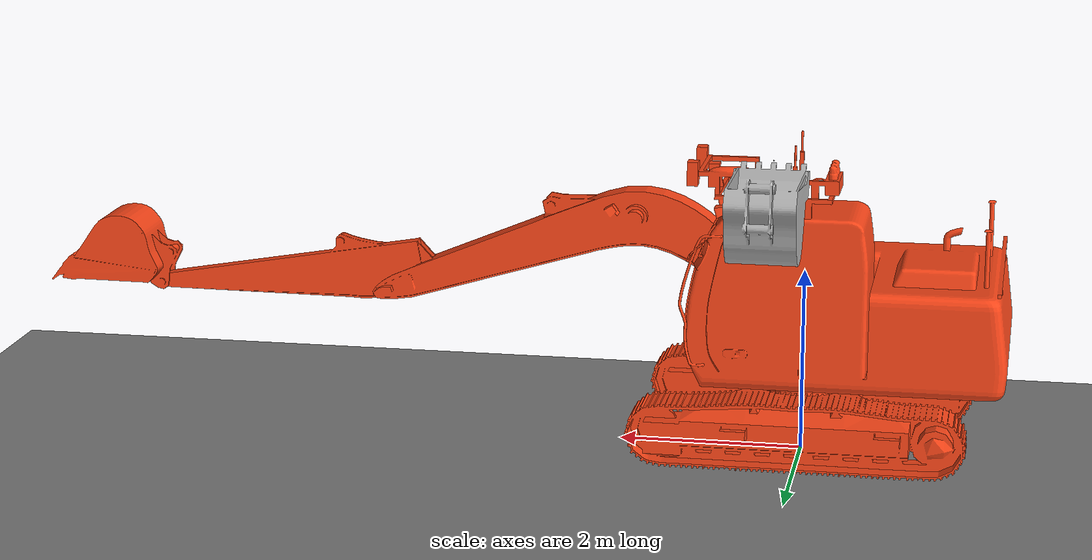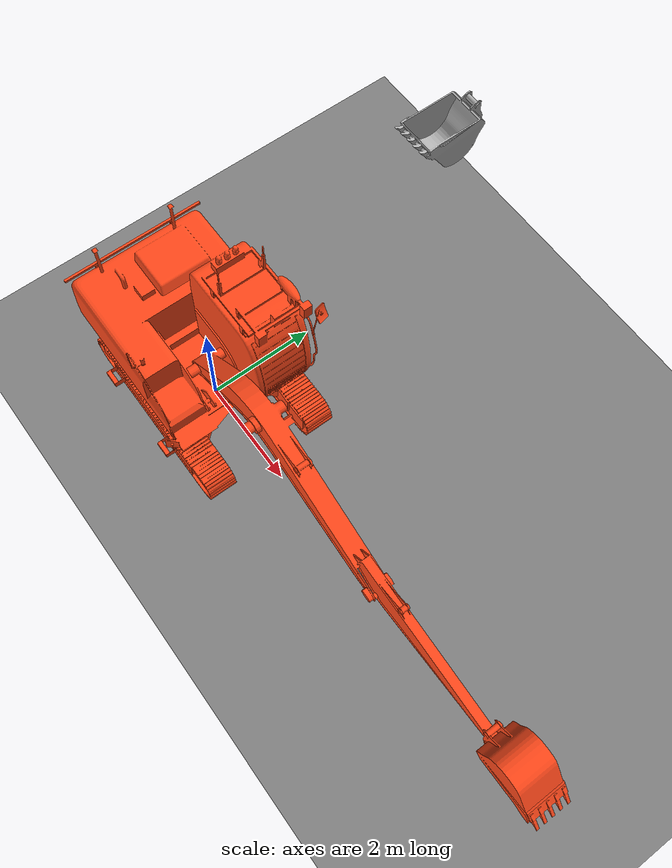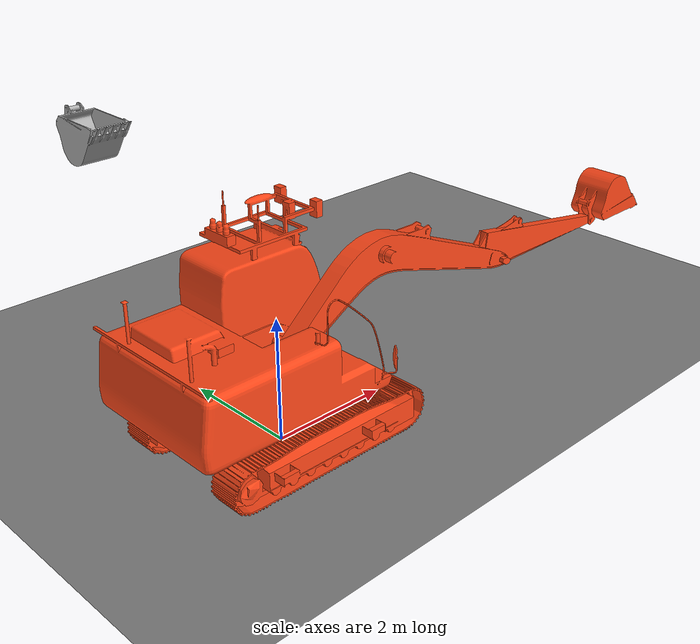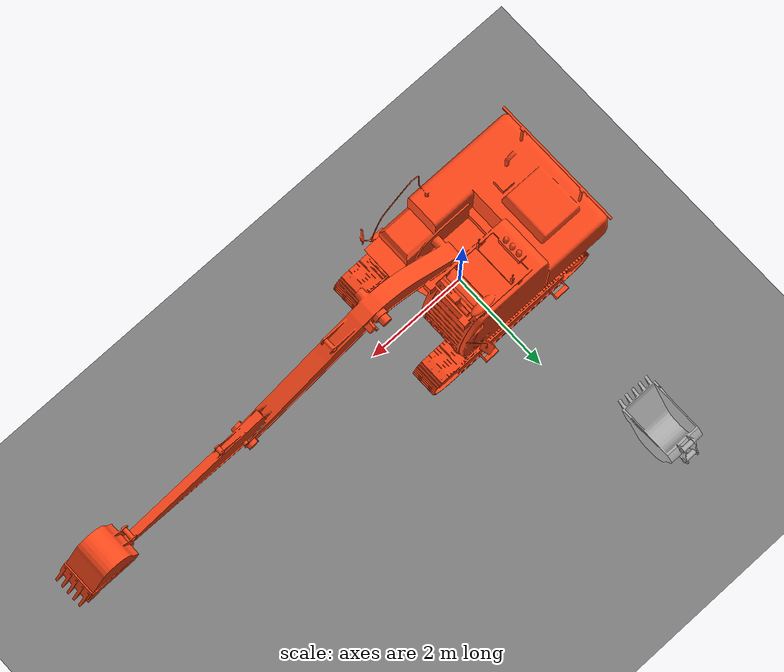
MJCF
<mujoco model="zx120">
  <default>
    <default class="robot">
      <default class="visual">
        <geom material="visualgeom" contype="0" conaffinity="0" group="2" />
      </default>
      <default class="collision">
        <geom material="collision_material" condim="3" contype="0" conaffinity="1" group="1" solref="0.005 1" friction="1 0.01 0.01" />
        <equality solimp="0.99 0.999 1e-05" solref="0.005 1" />
      </default>
    </default>
  </default>

  <compiler angle="radian" />
  <option timestep="0.02" integrator="Euler" gravity="0 0 -0.0981" />

  <custom>
    <!-- brax custom params -->
    <numeric data="0 -0.5 1.6 0.96" name="init_qpos"/>
  </custom>
  <asset>
    <material name="default_material" rgba="0.7 0.7 0.7 1" />
    <material name="collision_material" rgba="1.0 0.28 0.1 0.9" />
    <mesh name="zx120-crawler" file="zx120_description/meshes/zx120-crawler.stl" />
    <mesh name="zx120-body" file="zx120_description/meshes/zx120-body.stl" />
    <mesh name="zx120-boom" file="zx120_description/meshes/zx120-boom.stl" />
    <mesh name="zx120-arm" file="zx120_description/meshes/zx120-arm.stl" />
    <mesh name="zx120-bucket" file="zx120_description/meshes/zx120-bucket.stl" />
  </asset>

  <worldbody>
    <light pos="0 0 15"/>
    <geom name="ground" type="plane" size="10 10 0.1"/>
      <body name="track_link" pos="0 0 0.1" quat="1 0 0 0">
        <inertial pos="-0.155869 0 0.358402" quat="1 0 0 0" mass="1" diaginertia="1 1 1" />
        <geom name="track_link_collision" pos="0 0 0" quat="1 0 0 0" type="mesh" mesh="zx120-crawler" class="collision" />
        <geom name="track_link_visual" pos="0 0 0" quat="1 0 0 0" material="default_material" type="mesh" mesh="zx120-crawler" class="visual" />
        <body name="body_link" pos="0 0 1" quat="1 0 0 0">
          <joint name="swing_joint" type="hinge" ref="0.0" axis="0 0 1" />
          <inertial pos="-0.501522 0 1.191169" quat="1 0 0 0" mass="0.03" diaginertia="1 1 1" />
          <geom name="body_link_collision" pos="0 0 0" quat="1 0 0 0" type="mesh" mesh="zx120-body" class="collision" />
          <geom name="body_link_visual" pos="0 0 0" quat="1 0 0 0" material="default_material" type="mesh" mesh="zx120-body" class="visual" />
          <body name="boom_link" pos="0.14 -0.16443 0.424" quat="0.7071067811882787 0.0 0.7071067811848163 0.0">
            <joint name="boom_joint" type="hinge" ref="0.0" limited="true" range="-1.2217304764 0.767944870878" axis="0 1 0" />
            <inertial pos="2.091062 0.055029 0.975556" quat="1 0 0 0" mass="0.03" diaginertia="1 1 1" />
            <geom name="boom_link_collision" pos="0 0 0" quat="0.8295471813034682 0.0 -0.5584366338193358 0.0" type="mesh" mesh="zx120-boom" class="collision" />
            <geom name="boom_link_visual" pos="0 0 0" quat="0.8295471813034682 0.0 -0.5584366338193358 0.0" material="default_material" type="mesh" mesh="zx120-boom" class="visual" />
            <body name="arm_link" pos="0 0 4.6" quat="1 0 0 0">
              <joint name="arm_joint" type="hinge" ref="0.0" limited="true" range="0.523598775598 2.65290046303" axis="0 1 0" />
              <inertial pos="0.305996 0.000026 -0.912806" quat="1 0 0 0" mass="0.03" diaginertia="1 1 1" />
              <geom name="arm_link_collision" pos="0 0 0" quat="-0.06914844865406194 -0.0 0.9976063813191737 -0.0" type="mesh" mesh="zx120-arm" class="collision" />
              <geom name="arm_link_visual" pos="0 0 0" quat="-0.06914844865406194 -0.0 0.9976063813191737 -0.0" material="default_material" type="mesh" mesh="zx120-arm" class="visual" />
              <body name="bucket_link" pos="0 0 2.519" quat="1 0 0 0">
                <joint name="bucket_joint" type="hinge" ref="0.0" limited="true" range="-0.575958653158 2.49582083035" axis="0 1 0" />
                <inertial pos="-0.442405 0.001740 0.247894" quat="1 0 0 0" mass="0.03" diaginertia="1 1 1" />
                <geom name="bucket_link_collision" pos="0 0 0" quat="0.9305076219123143 0.0 0.36627252908604757 0.0" type="mesh" mesh="zx120-bucket" class="collision" />
                <geom name="bucket_link_visual" pos="0 0 0" quat="0.9305076219123143 0.0 0.36627252908604757 0.0" material="default_material" type="mesh" mesh="zx120-bucket" class="visual" />
                <site name="bucket_end_site" pos="0 0 1.23" quat="0.9063077870366848 0.0 0.4226182617406248 0.0" />
              </body>
            </body>
          </body>
        </body>
      </body>
    <body name="goal" pos="0 5 4" quat="0.5 0.5 -0.5 0.5">
        <geom name="goal_visual" quat="0.9305076219123143 0.0 0.36627252908604757 0.0" material="default_material" type="mesh" mesh="zx120-bucket" class="visual" />
        <site name="goal_end_site" pos="0 0 1.23" quat="0.9063077870366848 0.0 0.4226182617406248 0.0" />
    </body>
  </worldbody>

  <actuator>
    <motor name="swing_joint_ctrl" joint="swing_joint" gear="10" forcerange="-10 10" ctrlrange="-10 10"  />
    <motor name="boom_joint_ctrl" joint="boom_joint" gear="10" forcerange="-500 500" ctrlrange="-10 10" />
    <motor name="arm_joint_ctrl" joint="arm_joint" gear="10" forcerange="-10 10" ctrlrange="-10 10" />
    <motor name="bucket_joint_ctrl" joint="bucket_joint" gear="10" forcerange="-10 10" ctrlrange="-10 10" />
  </actuator>

  <contact>
    <exclude body1="track_link" body2="body_link" />
    <exclude body1="body_link" body2="boom_link" />
    <exclude body1="boom_link" body2="arm_link" />
    <exclude body1="arm_link" body2="bucket_link" />
  </contact>

  <sensor>
    <framepos name="bucket_end_pos" objtype="site" objname="bucket_end_site" />
    <framequat  name="bucket_end_quat" objtype="site" objname="bucket_end_site" />
    <framepos name="goal_end_pos" objtype="site" objname="goal_end_site" />
    <framequat  name="goal_end_quat" objtype="site" objname="goal_end_site" />
  </sensor>
</mujoco>
